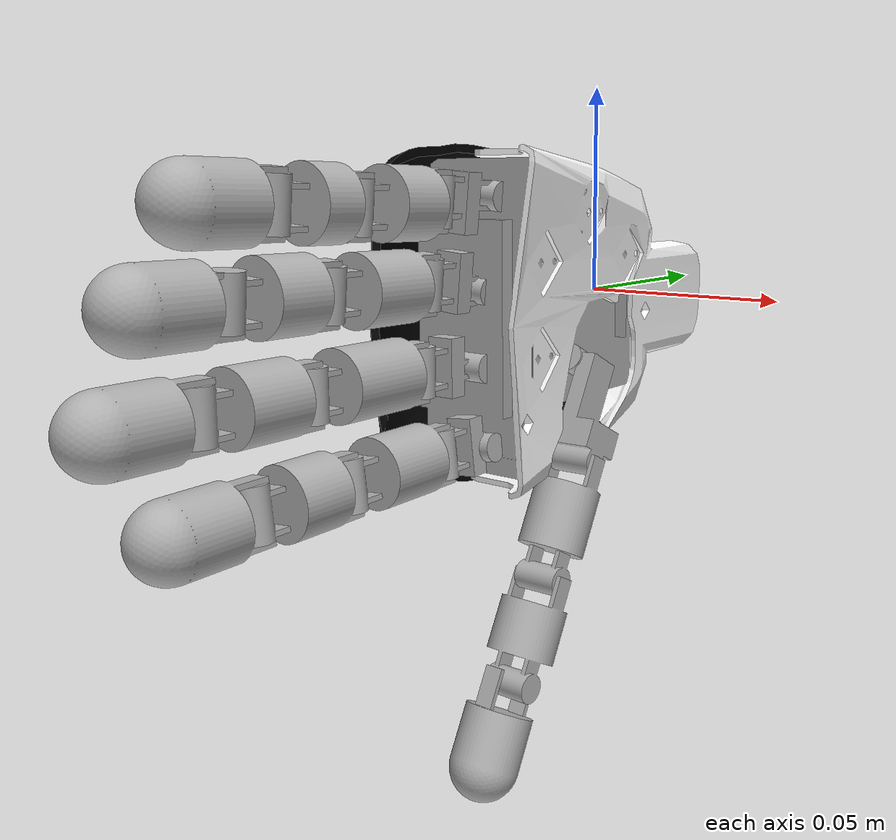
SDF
<sdf version='1.6'>
  <model name='ICub'>
    <link name='base_link'>
      <pose frame=''>0 0 0 0 -0 0</pose>
      <inertial>
        <pose frame=''>0.011682 -0.051355 -0.000577 0 -0 0</pose>
        <mass>1.221</mass>
        <inertia>
          <ixx>1.23288</ixx>
          <ixy>0.000161724</ixy>
          <ixz>-4.09406e-06</ixz>
          <iyy>1.2322</iyy>
          <iyz>-5.17611e-06</iyz>
          <izz>1.23276</izz>
        </inertia>
      </inertial>
      <visual name='base_link_fixed_joint_lump__left_palm_visual'>
        <pose frame=''>0.016 -0.0625 -0 1.5708 -0 1.5708</pose>
        <geometry>
          <mesh>
            <scale>1 1 1</scale>
            <uri>model://icub_with_hands/meshes/left_palm.dae</uri>
          </mesh>
        </geometry>
      </visual>
      <visual name='base_link_fixed_joint_lump__lindexbase_visual_1'>
        <pose frame=''>0.01225 -0.0643 -0.027 -1.4749 -0.072507 -1.57079</pose>
        <geometry>
          <mesh>
            <scale>1 1 1</scale>
            <uri>model://icub_with_hands/meshes/lindexbase.dae</uri>
          </mesh>
        </geometry>
      </visual>
      <visual name='base_link_fixed_joint_lump__lail0_visual_2'>
        <pose frame=''>0.01225 -0.075498 -0.027259 0.0959 0.017493 -1.57079</pose>
        <geometry>
          <mesh>
            <scale>1 1 1</scale>
            <uri>model://icub_with_hands/meshes/lail0.dae</uri>
          </mesh>
        </geometry>
      </visual>
      <visual name='base_link_fixed_joint_lump__llittlebase_visual_3'>
        <pose frame=''>0.0135 -0.06225 0.02475 -1.6581 -0.017493 -1.57079</pose>
        <geometry>
          <mesh>
            <scale>1 1 1</scale>
            <uri>model://icub_with_hands/meshes/llittlebase.dae</uri>
          </mesh>
        </geometry>
      </visual>
      <visual name='base_link_fixed_joint_lump__llil0_visual_4'>
        <pose frame=''>0.0135 -0.077048 0.025009 -0.0873 -0.017493 -1.57079</pose>
        <geometry>
          <mesh>
            <scale>1 1 1</scale>
            <uri>model://icub_with_hands/meshes/llil0.dae</uri>
          </mesh>
        </geometry>
      </visual>
      <visual name='base_link_fixed_joint_lump__lmiddlebase_visual_5'>
        <pose frame=''>0.011 -0.0653 -0.01 -1.5708 7e-06 -1.57079</pose>
        <geometry>
          <mesh>
            <scale>1 1 1</scale>
            <uri>model://icub_with_hands/meshes/lmiddlebase.dae</uri>
          </mesh>
        </geometry>
      </visual>
      <visual name='base_link_fixed_joint_lump__lml0_visual_6'>
        <pose frame=''>0.011 -0.0803 -0.01 -0 7e-06 -1.57079</pose>
        <geometry>
          <mesh>
            <scale>1 1 1</scale>
            <uri>model://icub_with_hands/meshes/lml0.dae</uri>
          </mesh>
        </geometry>
      </visual>
      <visual name='base_link_fixed_joint_lump__lringbase_visual_7'>
        <pose frame=''>0.01175 -0.06415 0.0059 -1.6581 -0.008693 -1.57079</pose>
        <geometry>
          <mesh>
            <scale>1 1 1</scale>
            <uri>model://icub_with_hands/meshes/lringbase.dae</uri>
          </mesh>
        </geometry>
      </visual>
      <visual name='base_link_fixed_joint_lump__lril0_visual_8'>
        <pose frame=''>0.01175 -0.078949 0.006029 -0.0873 -0.008693 -1.57079</pose>
        <geometry>
          <mesh>
            <scale>1 1 1</scale>
            <uri>model://icub_with_hands/meshes/lril0.dae</uri>
          </mesh>
        </geometry>
      </visual>
    </link>
    <link name='lail1'>
      <pose frame=''>0.01225 -0.075498 -0.027259 0.0959 0.017493 -1.57079</pose>
      <inertial>
        <pose frame=''>0 0 0 0 -0 0</pose>
        <mass>0.111</mass>
        <inertia>
          <ixx>0.112</ixx>
          <ixy>0</ixy>
          <ixz>0</ixz>
          <iyy>0.112</iyy>
          <iyz>0</iyz>
          <izz>0.112</izz>
        </inertia>
      </inertial>
      <visual name='lail1_visual'>
        <pose frame=''>0.0259 0 0 0 -0 0</pose>
        <geometry>
          <mesh>
            <scale>1 1 1</scale>
            <uri>model://icub_with_hands/meshes/lail1.dae</uri>
          </mesh>
        </geometry>
      </visual>
    </link>
    <joint name='laij3' type='revolute'>
      <child>lail1</child>
      <parent>base_link</parent>
      <axis>
        <xyz>-0.095753 -0.017412 0.995253</xyz>
        <limit>
          <lower>0</lower>
          <upper>1.5708</upper>
          <effort>1000</effort>
          <velocity>0.5</velocity>
        </limit>
        <dynamics>
          <spring_reference>0</spring_reference>
          <spring_stiffness>0</spring_stiffness>
        </dynamics>
        <use_parent_model_frame>1</use_parent_model_frame>
      </axis>
    </joint>
    <link name='lail2'>
      <pose frame=''>0.01225 -0.101394 -0.027712 0.0959 0.017493 -1.57079</pose>
      <inertial>
        <pose frame=''>0 0 0 0 -0 0</pose>
        <mass>0.111</mass>
        <inertia>
          <ixx>0.112</ixx>
          <ixy>0</ixy>
          <ixz>0</ixz>
          <iyy>0.112</iyy>
          <iyz>0</iyz>
          <izz>0.112</izz>
        </inertia>
      </inertial>
      <visual name='lail2_visual'>
        <pose frame=''>0.022 0 0 0 -0 0</pose>
        <geometry>
          <mesh>
            <scale>1 1 1</scale>
            <uri>model://icub_with_hands/meshes/lail2.dae</uri>
          </mesh>
        </geometry>
      </visual>
    </link>
    <joint name='laij4' type='revolute'>
      <child>lail2</child>
      <parent>lail1</parent>
      <axis>
        <xyz>-0.095753 -0.017412 0.995253</xyz>
        <limit>
          <lower>0</lower>
          <upper>1.5708</upper>
          <effort>1000</effort>
          <velocity>0.5</velocity>
        </limit>
        <dynamics>
          <spring_reference>0</spring_reference>
          <spring_stiffness>0</spring_stiffness>
        </dynamics>
        <use_parent_model_frame>1</use_parent_model_frame>
      </axis>
    </joint>
    <link name='lail3'>
      <pose frame=''>0.01225 -0.12339 -0.028097 0.0959 0.017493 -1.57079</pose>
      <inertial>
        <pose frame=''>0 0 0 0 -0 0</pose>
        <mass>0.111</mass>
        <inertia>
          <ixx>0.112</ixx>
          <ixy>0</ixy>
          <ixz>0</ixz>
          <iyy>0.112</iyy>
          <iyz>0</iyz>
          <izz>0.112</izz>
        </inertia>
      </inertial>
      <visual name='lail3_visual'>
        <pose frame=''>0.0168 0 0 -1.5708 0 0</pose>
        <geometry>
          <mesh>
            <scale>1 1 1</scale>
            <uri>model://icub_with_hands/meshes/lail3.dae</uri>
          </mesh>
        </geometry>
      </visual>
    </link>
    <joint name='laij5' type='revolute'>
      <child>lail3</child>
      <parent>lail2</parent>
      <axis>
        <xyz>-0.095753 -0.017412 0.995253</xyz>
        <limit>
          <lower>0</lower>
          <upper>1.5708</upper>
          <effort>1000</effort>
          <velocity>0.5</velocity>
        </limit>
        <dynamics>
          <spring_reference>0</spring_reference>
          <spring_stiffness>0</spring_stiffness>
        </dynamics>
        <use_parent_model_frame>1</use_parent_model_frame>
      </axis>
    </joint>
    <link name='llil1'>
      <pose frame=''>0.0135 -0.077048 0.025009 -0.0873 -0.017493 -1.57079</pose>
      <inertial>
        <pose frame=''>0 0 0 0 -0 0</pose>
        <mass>0.111</mass>
        <inertia>
          <ixx>0.112</ixx>
          <ixy>0</ixy>
          <ixz>0</ixz>
          <iyy>0.112</iyy>
          <iyz>0</iyz>
          <izz>0.112</izz>
        </inertia>
      </inertial>
      <visual name='llil1_visual'>
        <pose frame=''>0.0218 0 0 0 -0 0</pose>
        <geometry>
          <mesh>
            <scale>1 1 1</scale>
            <uri>model://icub_with_hands/meshes/llil1.dae</uri>
          </mesh>
        </geometry>
      </visual>
    </link>
    <joint name='llij3' type='revolute'>
      <child>llil1</child>
      <parent>base_link</parent>
      <axis>
        <xyz>0.087189 0.017426 0.996039</xyz>
        <limit>
          <lower>0</lower>
          <upper>1.5708</upper>
          <effort>1000</effort>
          <velocity>0.5</velocity>
        </limit>
        <dynamics>
          <spring_reference>0</spring_reference>
          <spring_stiffness>0</spring_stiffness>
        </dynamics>
        <use_parent_model_frame>1</use_parent_model_frame>
      </axis>
    </joint>
    <link name='llil2'>
      <pose frame=''>0.013501 -0.098844 0.02539 -0.0873 -0.017493 -1.57079</pose>
      <inertial>
        <pose frame=''>0 0 0 0 -0 0</pose>
        <mass>0.111</mass>
        <inertia>
          <ixx>0.112</ixx>
          <ixy>0</ixy>
          <ixz>0</ixz>
          <iyy>0.112</iyy>
          <iyz>0</iyz>
          <izz>0.112</izz>
        </inertia>
      </inertial>
      <visual name='llil2_visual'>
        <pose frame=''>0.019 0 0 0 -0 0</pose>
        <geometry>
          <mesh>
            <scale>1 1 1</scale>
            <uri>model://icub_with_hands/meshes/llil2.dae</uri>
          </mesh>
        </geometry>
      </visual>
    </link>
    <joint name='llij4' type='revolute'>
      <child>llil2</child>
      <parent>llil1</parent>
      <axis>
        <xyz>0.087189 0.017426 0.996039</xyz>
        <limit>
          <lower>0</lower>
          <upper>1.5708</upper>
          <effort>1000</effort>
          <velocity>0.5</velocity>
        </limit>
        <dynamics>
          <spring_reference>0</spring_reference>
          <spring_stiffness>0</spring_stiffness>
        </dynamics>
        <use_parent_model_frame>1</use_parent_model_frame>
      </axis>
    </joint>
    <link name='llil3'>
      <pose frame=''>0.013501 -0.117841 0.025723 -0.0873 -0.017493 -1.57079</pose>
      <inertial>
        <pose frame=''>0 0 0 0 -0 0</pose>
        <mass>0.111</mass>
        <inertia>
          <ixx>0.112</ixx>
          <ixy>0</ixy>
          <ixz>0</ixz>
          <iyy>0.112</iyy>
          <iyz>0</iyz>
          <izz>0.112</izz>
        </inertia>
      </inertial>
      <visual name='llil3_visual'>
        <pose frame=''>0.0168 0 0 -1.5708 0 0</pose>
        <geometry>
          <mesh>
            <scale>1 1 1</scale>
            <uri>model://icub_with_hands/meshes/llil3.dae</uri>
          </mesh>
        </geometry>
      </visual>
    </link>
    <joint name='llij5' type='revolute'>
      <child>llil3</child>
      <parent>llil2</parent>
      <axis>
        <xyz>0.087189 0.017426 0.996039</xyz>
        <limit>
          <lower>0</lower>
          <upper>1.5708</upper>
          <effort>1000</effort>
          <velocity>0.5</velocity>
        </limit>
        <dynamics>
          <spring_reference>0</spring_reference>
          <spring_stiffness>0</spring_stiffness>
        </dynamics>
        <use_parent_model_frame>1</use_parent_model_frame>
      </axis>
    </joint>
    <link name='lml1'>
      <pose frame=''>0.011 -0.0803 -0.01 -0 7e-06 -1.57079</pose>
      <inertial>
        <pose frame=''>0 0 0 0 -0 0</pose>
        <mass>0.111</mass>
        <inertia>
          <ixx>0.112</ixx>
          <ixy>0</ixy>
          <ixz>0</ixz>
          <iyy>0.112</iyy>
          <iyz>0</iyz>
          <izz>0.112</izz>
        </inertia>
      </inertial>
      <visual name='lml1_visual'>
        <pose frame=''>0.0285 0 0 0 -0 0</pose>
        <geometry>
          <mesh>
            <scale>1 1 1</scale>
            <uri>model://icub_with_hands/meshes/lml1.dae</uri>
          </mesh>
        </geometry>
      </visual>
    </link>
    <joint name='lmj3' type='revolute'>
      <child>lml1</child>
      <parent>base_link</parent>
      <axis>
        <xyz>0 -7e-06 1</xyz>
        <limit>
          <lower>0</lower>
          <upper>1.5708</upper>
          <effort>1000</effort>
          <velocity>0.5</velocity>
        </limit>
        <dynamics>
          <spring_reference>0</spring_reference>
          <spring_stiffness>0</spring_stiffness>
        </dynamics>
        <use_parent_model_frame>1</use_parent_model_frame>
      </axis>
    </joint>
    <link name='lml2'>
      <pose frame=''>0.011 -0.1088 -0.01 -0 7e-06 -1.57079</pose>
      <inertial>
        <pose frame=''>0 0 0 0 -0 0</pose>
        <mass>0.111</mass>
        <inertia>
          <ixx>0.112</ixx>
          <ixy>0</ixy>
          <ixz>0</ixz>
          <iyy>0.112</iyy>
          <iyz>0</iyz>
          <izz>0.112</izz>
        </inertia>
      </inertial>
      <visual name='lml2_visual'>
        <pose frame=''>0.024 0 0 0 -0 0</pose>
        <geometry>
          <mesh>
            <scale>1 1 1</scale>
            <uri>model://icub_with_hands/meshes/lml2.dae</uri>
          </mesh>
        </geometry>
      </visual>
    </link>
    <joint name='lmj4' type='revolute'>
      <child>lml2</child>
      <parent>lml1</parent>
      <axis>
        <xyz>0 -7e-06 1</xyz>
        <limit>
          <lower>0</lower>
          <upper>1.5708</upper>
          <effort>1000</effort>
          <velocity>0.5</velocity>
        </limit>
        <dynamics>
          <spring_reference>0</spring_reference>
          <spring_stiffness>0</spring_stiffness>
        </dynamics>
        <use_parent_model_frame>1</use_parent_model_frame>
      </axis>
    </joint>
    <link name='lml3'>
      <pose frame=''>0.011001 -0.1328 -0.010001 -0 7e-06 -1.57079</pose>
      <inertial>
        <pose frame=''>0 0 0 0 -0 0</pose>
        <mass>0.111</mass>
        <inertia>
          <ixx>0.112</ixx>
          <ixy>0</ixy>
          <ixz>0</ixz>
          <iyy>0.112</iyy>
          <iyz>0</iyz>
          <izz>0.112</izz>
        </inertia>
      </inertial>
      <visual name='lml3_visual'>
        <pose frame=''>0.0168 0 0 -1.5708 0 0</pose>
        <geometry>
          <mesh>
            <scale>1 1 1</scale>
            <uri>model://icub_with_hands/meshes/lml3.dae</uri>
          </mesh>
        </geometry>
      </visual>
    </link>
    <joint name='lmj5' type='revolute'>
      <child>lml3</child>
      <parent>lml2</parent>
      <axis>
        <xyz>0 -7e-06 1</xyz>
        <limit>
          <lower>0</lower>
          <upper>1.5708</upper>
          <effort>1000</effort>
          <velocity>0.5</velocity>
        </limit>
        <dynamics>
          <spring_reference>0</spring_reference>
          <spring_stiffness>0</spring_stiffness>
        </dynamics>
        <use_parent_model_frame>1</use_parent_model_frame>
      </axis>
    </joint>
    <link name='lril1'>
      <pose frame=''>0.01175 -0.078949 0.006029 -0.0873 -0.008693 -1.57079</pose>
      <inertial>
        <pose frame=''>0 0 0 0 -0 0</pose>
        <mass>0.111</mass>
        <inertia>
          <ixx>0.112</ixx>
          <ixy>0</ixy>
          <ixz>0</ixz>
          <iyy>0.112</iyy>
          <iyz>0</iyz>
          <izz>0.112</izz>
        </inertia>
      </inertial>
      <visual name='lril1_visual'>
        <pose frame=''>0.0259 0 0 0 -0 0</pose>
        <geometry>
          <mesh>
            <scale>1 1 1</scale>
            <uri>model://icub_with_hands/meshes/lril1.dae</uri>
          </mesh>
        </geometry>
      </visual>
    </link>
    <joint name='lrij3' type='revolute'>
      <child>lril1</child>
      <parent>base_link</parent>
      <axis>
        <xyz>0.087189 0.00866 0.996154</xyz>
        <limit>
          <lower>0</lower>
          <upper>1.5708</upper>
          <effort>1000</effort>
          <velocity>0.5</velocity>
        </limit>
        <dynamics>
          <spring_reference>0</spring_reference>
          <spring_stiffness>0</spring_stiffness>
        </dynamics>
        <use_parent_model_frame>1</use_parent_model_frame>
      </axis>
    </joint>
    <link name='lril2'>
      <pose frame=''>0.01175 -0.104848 0.006254 -0.0873 -0.008693 -1.57079</pose>
      <inertial>
        <pose frame=''>0 0 0 0 -0 0</pose>
        <mass>0.111</mass>
        <inertia>
          <ixx>0.112</ixx>
          <ixy>0</ixy>
          <ixz>0</ixz>
          <iyy>0.112</iyy>
          <iyz>0</iyz>
          <izz>0.112</izz>
        </inertia>
      </inertial>
      <visual name='lril2_visual'>
        <pose frame=''>0.022 0 0 0 -0 0</pose>
        <geometry>
          <mesh>
            <scale>1 1 1</scale>
            <uri>model://icub_with_hands/meshes/lril2.dae</uri>
          </mesh>
        </geometry>
      </visual>
    </link>
    <joint name='lrij4' type='revolute'>
      <child>lril2</child>
      <parent>lril1</parent>
      <axis>
        <xyz>0.087189 0.00866 0.996154</xyz>
        <limit>
          <lower>0</lower>
          <upper>1.5708</upper>
          <effort>1000</effort>
          <velocity>0.5</velocity>
        </limit>
        <dynamics>
          <spring_reference>0</spring_reference>
          <spring_stiffness>0</spring_stiffness>
        </dynamics>
        <use_parent_model_frame>1</use_parent_model_frame>
      </axis>
    </joint>
    <link name='lril3'>
      <pose frame=''>0.011751 -0.126848 0.006445 -0.0873 -0.008693 -1.57079</pose>
      <inertial>
        <pose frame=''>0 0 0 0 -0 0</pose>
        <mass>0.111</mass>
        <inertia>
          <ixx>0.112</ixx>
          <ixy>0</ixy>
          <ixz>0</ixz>
          <iyy>0.112</iyy>
          <iyz>0</iyz>
          <izz>0.112</izz>
        </inertia>
      </inertial>
      <visual name='lril3_visual'>
        <pose frame=''>0.0168 0 0 -1.5708 0 0</pose>
        <geometry>
          <mesh>
            <scale>1 1 1</scale>
            <uri>model://icub_with_hands/meshes/lril3.dae</uri>
          </mesh>
        </geometry>
      </visual>
    </link>
    <joint name='lrij5' type='revolute'>
      <child>lril3</child>
      <parent>lril2</parent>
      <axis>
        <xyz>0.087189 0.00866 0.996154</xyz>
        <limit>
          <lower>0</lower>
          <upper>1.5708</upper>
          <effort>1000</effort>
          <velocity>0.5</velocity>
        </limit>
        <dynamics>
          <spring_reference>0</spring_reference>
          <spring_stiffness>0</spring_stiffness>
        </dynamics>
        <use_parent_model_frame>1</use_parent_model_frame>
      </axis>
    </joint>
    <link name='ltl0'>
      <pose frame=''>0.021 -0.0386 -0.01235 -3.063 1.07329 -1.5708</pose>
      <inertial>
        <pose frame=''>0 0 0 0 -0 0</pose>
        <mass>0.222</mass>
        <inertia>
          <ixx>0.224</ixx>
          <ixy>0</ixy>
          <ixz>0</ixz>
          <iyy>0.224</iyy>
          <iyz>5.29396e-23</iyz>
          <izz>0.224</izz>
        </inertia>
      </inertial>
      <visual name='ltl0_visual'>
        <pose frame=''>0 0 0 -1.5708 0 0</pose>
        <geometry>
          <mesh>
            <scale>1 1 1</scale>
            <uri>model://icub_with_hands/meshes/ltl0.dae</uri>
          </mesh>
        </geometry>
      </visual>
      <visual name='ltl0_fixed_joint_lump__ltl1_visual_1'>
        <pose frame=''>0.021 -0.0056 0 -1.5708 0 0</pose>
        <geometry>
          <mesh>
            <scale>1 1 1</scale>
            <uri>model://icub_with_hands/meshes/ltl1.dae</uri>
          </mesh>
        </geometry>
      </visual>
    </link>
    <joint name='ltj2' type='revolute'>
      <child>ltl0</child>
      <parent>base_link</parent>
      <axis>
        <xyz>-0.078511 -0.876064 0.47576</xyz>
        <limit>
          <lower>0</lower>
          <upper>1.5708</upper>
          <effort>1000</effort>
          <velocity>0.5</velocity>
        </limit>
        <dynamics>
          <spring_reference>0</spring_reference>
          <spring_stiffness>0</spring_stiffness>
        </dynamics>
        <use_parent_model_frame>1</use_parent_model_frame>
      </axis>
    </joint>
    <link name='ltl2'>
      <pose frame=''>0.026583 -0.049008 -0.030595 1.64938 1.07329 -1.5708</pose>
      <inertial>
        <pose frame=''>0 0 0 0 -0 0</pose>
        <mass>0.111</mass>
        <inertia>
          <ixx>0.112</ixx>
          <ixy>0</ixy>
          <ixz>0</ixz>
          <iyy>0.112</iyy>
          <iyz>0</iyz>
          <izz>0.112</izz>
        </inertia>
      </inertial>
      <visual name='ltl2_visual'>
        <pose frame=''>0.026 0 0 0 -0 0</pose>
        <geometry>
          <mesh>
            <scale>1 1 1</scale>
            <uri>model://icub_with_hands/meshes/ltl2.dae</uri>
          </mesh>
        </geometry>
      </visual>
    </link>
    <joint name='ltj4' type='revolute'>
      <child>ltl2</child>
      <parent>ltl0</parent>
      <axis>
        <xyz>-0.996914 0.068991 -0.037465</xyz>
        <limit>
          <lower>0</lower>
          <upper>1.5708</upper>
          <effort>1000</effort>
          <velocity>0.5</velocity>
        </limit>
        <dynamics>
          <spring_reference>0</spring_reference>
          <spring_stiffness>0</spring_stiffness>
        </dynamics>
        <use_parent_model_frame>1</use_parent_model_frame>
      </axis>
    </joint>
    <link name='ltl3'>
      <pose frame=''>0.026583 -0.061416 -0.053443 1.64938 1.07329 -1.5708</pose>
      <inertial>
        <pose frame=''>0 0 0 0 -0 0</pose>
        <mass>0.111</mass>
        <inertia>
          <ixx>0.112</ixx>
          <ixy>0</ixy>
          <ixz>0</ixz>
          <iyy>0.112</iyy>
          <iyz>0</iyz>
          <izz>0.112</izz>
        </inertia>
      </inertial>
      <visual name='ltl3_visual'>
        <pose frame=''>0.022 0 0 0 -0 0</pose>
        <geometry>
          <mesh>
            <scale>1 1 1</scale>
            <uri>model://icub_with_hands/meshes/ltl3.dae</uri>
          </mesh>
        </geometry>
      </visual>
    </link>
    <joint name='ltj5' type='revolute'>
      <child>ltl3</child>
      <parent>ltl2</parent>
      <axis>
        <xyz>-0.996914 0.068991 -0.037465</xyz>
        <limit>
          <lower>0</lower>
          <upper>1.5708</upper>
          <effort>1000</effort>
          <velocity>0.5</velocity>
        </limit>
        <dynamics>
          <spring_reference>0</spring_reference>
          <spring_stiffness>0</spring_stiffness>
        </dynamics>
        <use_parent_model_frame>1</use_parent_model_frame>
      </axis>
    </joint>
    <link name='ltl4'>
      <pose frame=''>0.026583 -0.071915 -0.072776 1.64938 1.07329 -1.5708</pose>
      <inertial>
        <pose frame=''>0 0 0 0 -0 0</pose>
        <mass>0.111</mass>
        <inertia>
          <ixx>0.112</ixx>
          <ixy>0</ixy>
          <ixz>0</ixz>
          <iyy>0.112</iyy>
          <iyz>0</iyz>
          <izz>0.112</izz>
        </inertia>
      </inertial>
      <visual name='ltl4_visual'>
        <pose frame=''>0.0168 0 0 0 -0 0</pose>
        <geometry>
          <mesh>
            <scale>1 1 1</scale>
            <uri>model://icub_with_hands/meshes/ltl4.dae</uri>
          </mesh>
        </geometry>
      </visual>
    </link>
    <joint name='ltj6' type='revolute'>
      <child>ltl4</child>
      <parent>ltl3</parent>
      <axis>
        <xyz>-0.996914 0.068991 -0.037465</xyz>
        <limit>
          <lower>0</lower>
          <upper>1.5708</upper>
          <effort>1000</effort>
          <velocity>0.5</velocity>
        </limit>
        <dynamics>
          <spring_reference>0</spring_reference>
          <spring_stiffness>0</spring_stiffness>
        </dynamics>
        <use_parent_model_frame>1</use_parent_model_frame>
      </axis>
    </joint>
  </model>
</sdf>
